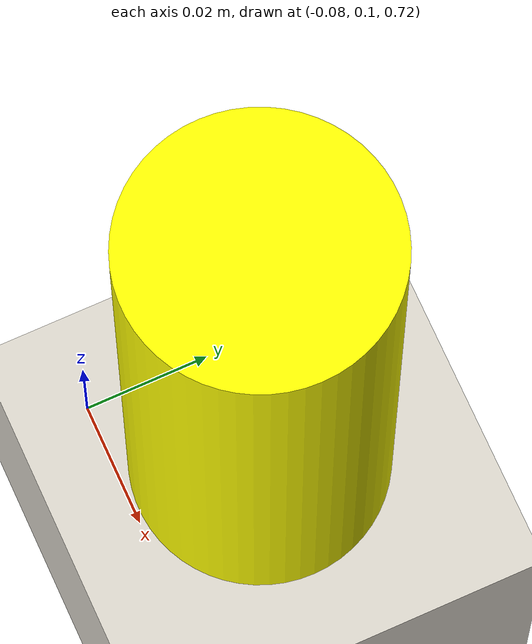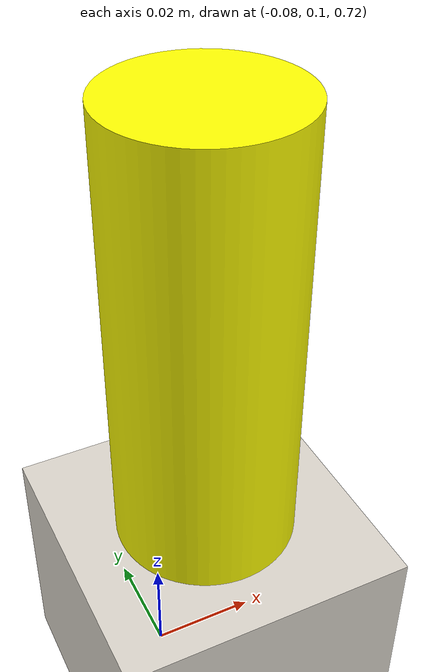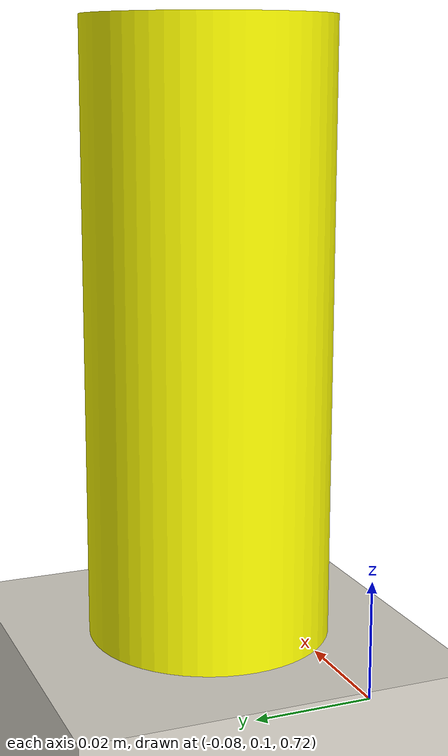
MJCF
<mujoco model="object_scene">
  <compiler angle="radian" coordinate="local" meshdir="." texturedir="."/>
  <asset>
    <mesh name="cylinder_base_vis" file="STL/cylinder_base.stl" scale="0.4 0.4 1"/>
    <mesh name="cylinder_base_col" file="STL/cylinder_base.stl" scale="0.4 0.4 1"/>
  </asset>
  <worldbody>
    <body name="tube" pos="-0.06 0.12 0.728">
      <joint name="tube_free" type="free" damping="0.02"/>
      <geom name="cylinder_base_vis" type="mesh" mesh="cylinder_base_vis" rgba="1 1 0 1" contype="0" conaffinity="0"/>
      <geom name="cylinder_base_col" type="mesh" mesh="cylinder_base_col" rgba="1 0 0 0" contype="1" conaffinity="1" friction="0.5 0.01 0.005"/>
      <inertial pos="0 0 0.05" mass="0.4" diaginertia="0.00156 0.00156 0.000335"/>
    </body>
    <body name="desk" pos="0 0 0.7">
      <geom name="desk_col" type="box" size="1.4 1.0 0.028" rgba="0.86 0.84 0.8 1" contype="1" conaffinity="1" friction="0.4 0.01 0.005"/>
    </body>
  </worldbody>
</mujoco>
